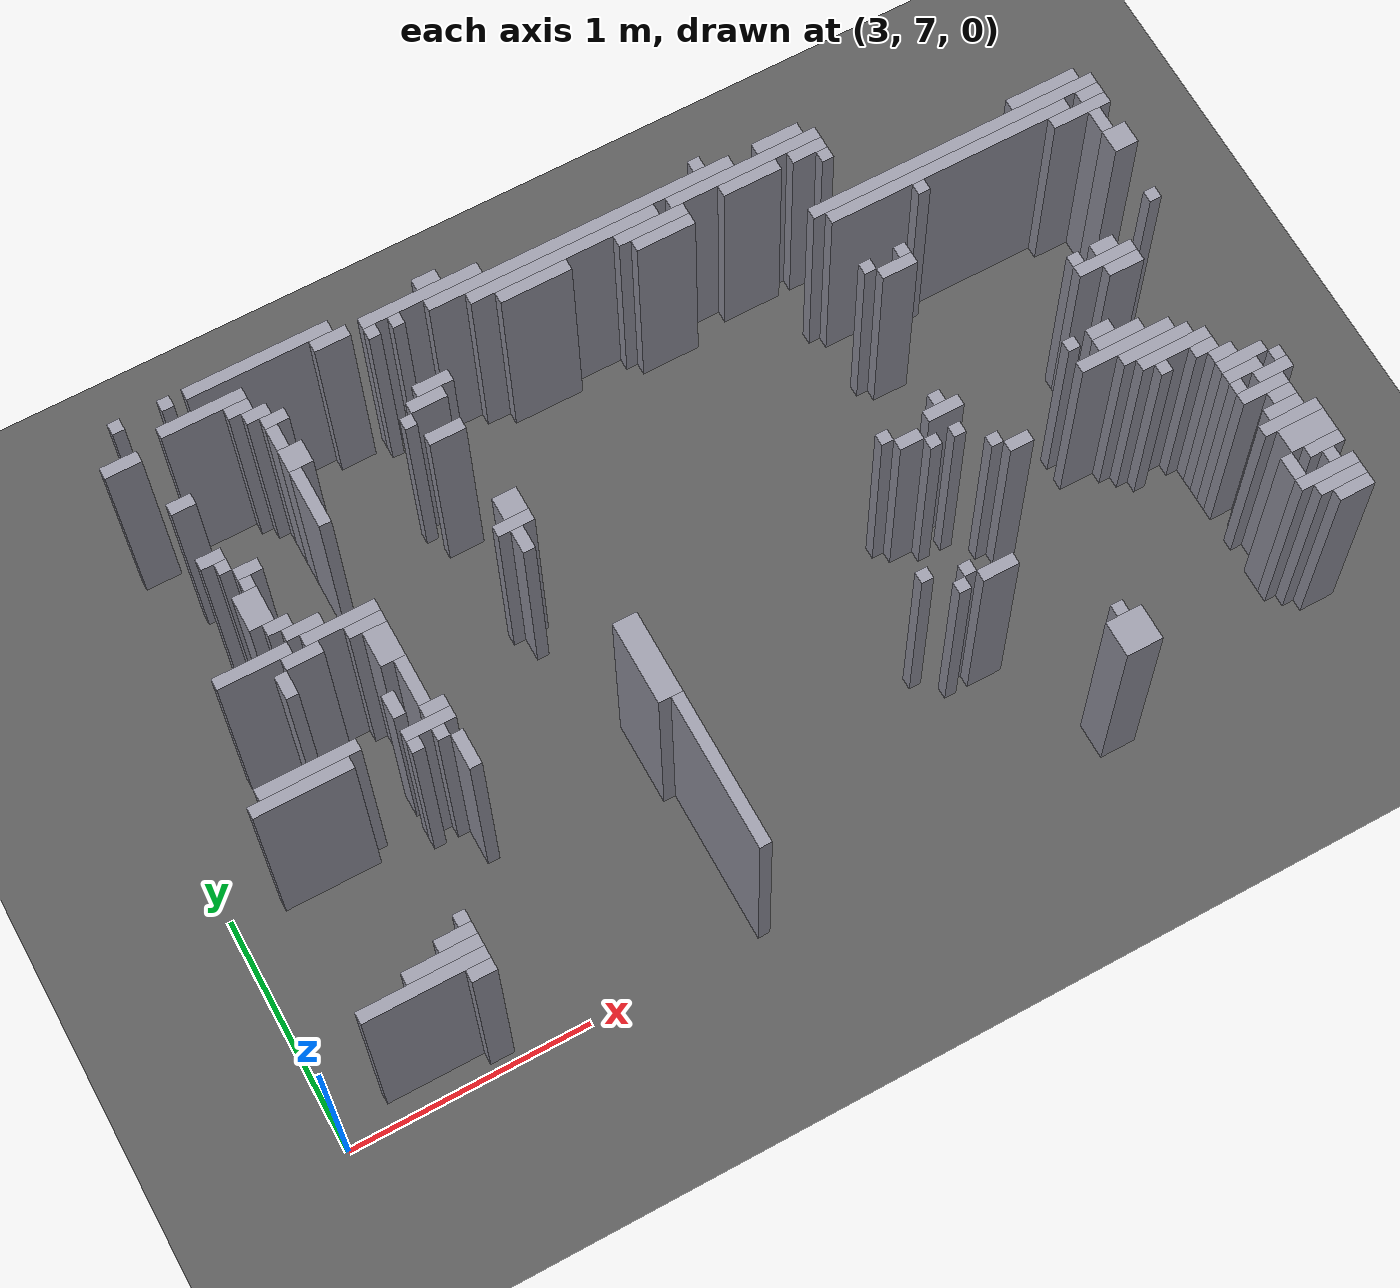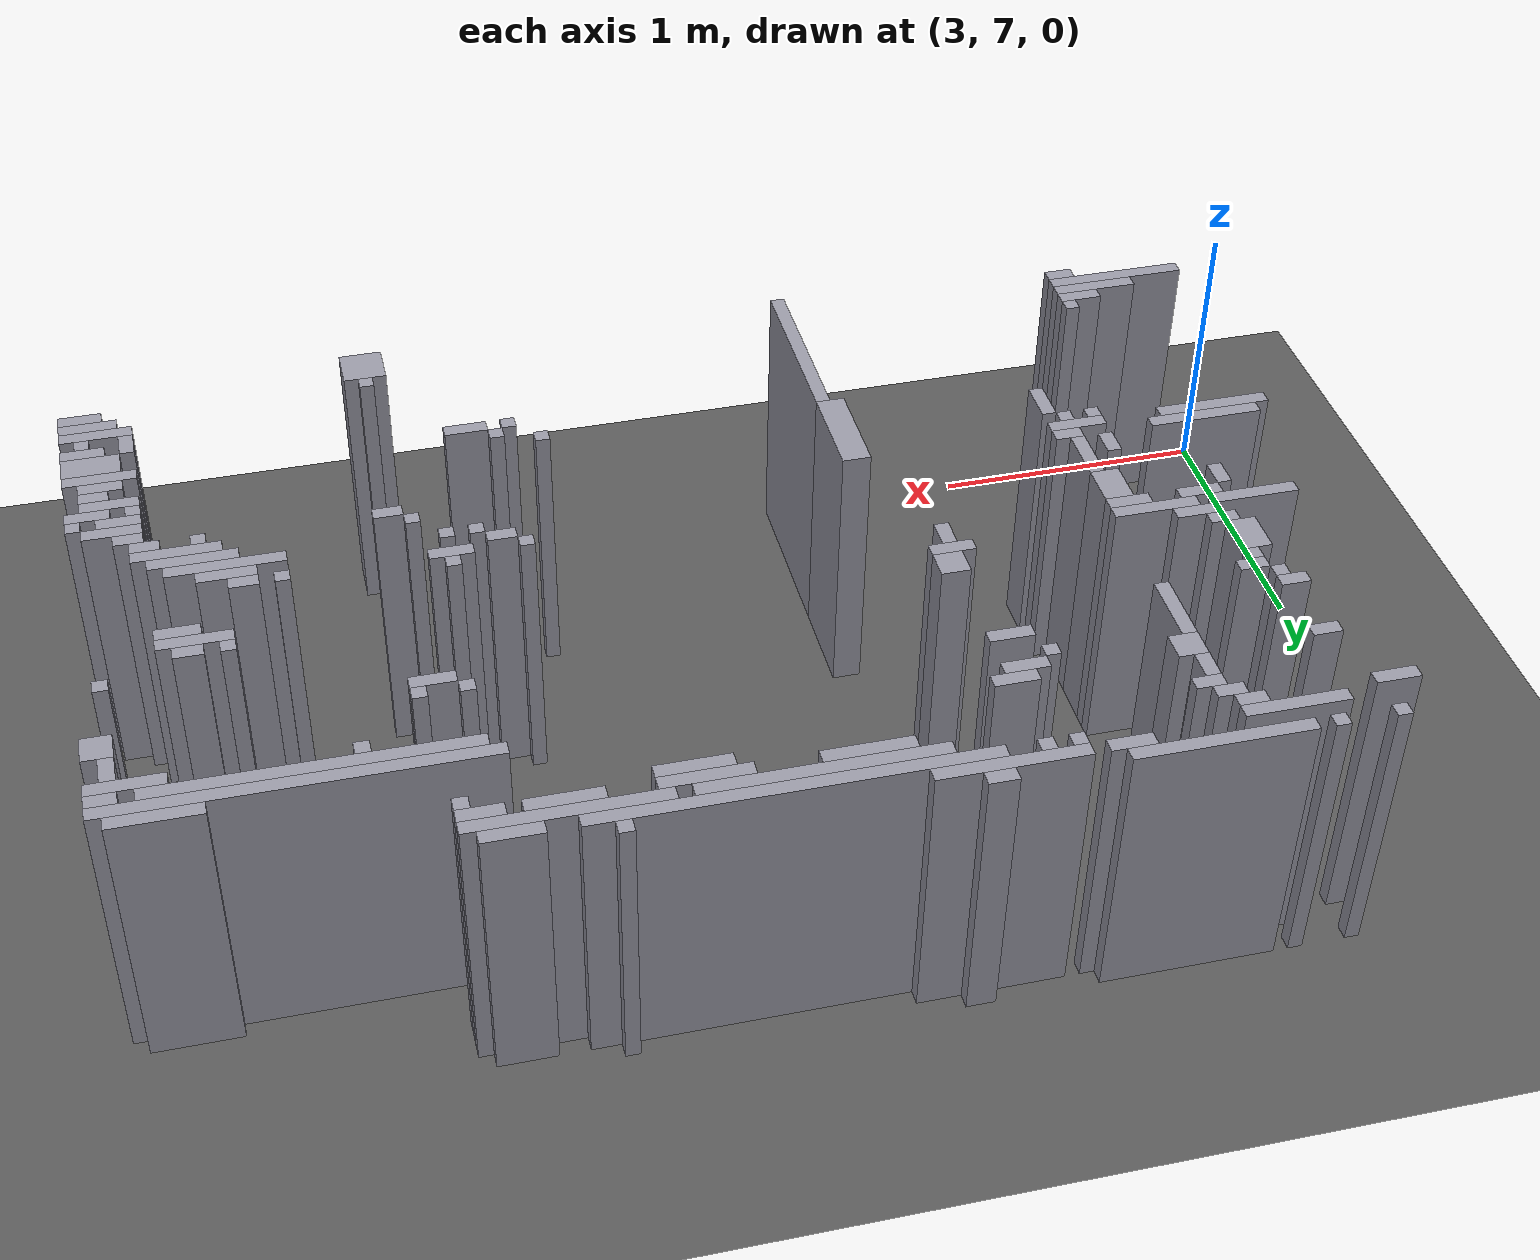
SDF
<sdf version="1.8">
 <world name="dimi">
  <model name="ground">
   <static>true</static>
   <link name="ground_link">
    <collision name="c"><geometry><plane><normal>0 0 1</normal><size>60 60</size></plane></geometry></collision>
    <visual name="v">
     <geometry><plane><normal>0 0 1</normal><size>60 60</size></plane></geometry>
     <material><ambient>0.3 0.3 0.3 1</ambient><diffuse>0.35 0.35 0.35 1</diffuse></material>
    </visual>
   </link>
  </model>
  <model name="walls">
   <static>true</static>
   <link name="wall_4">
    <pose>3.4280 9.5670 0.5000 0 0 0</pose>
    <collision name="c"><geometry><box><size>0.0500 0.0500 1.0000</size></box></geometry></collision>
    <visual name="v">
     <geometry><box><size>0.0500 0.0500 1.0000</size></box></geometry>
     <material><ambient>0.5 0.5 0.55 1</ambient><diffuse>0.6 0.6 0.65 1</diffuse></material>
    </visual>
   </link>
   <link name="wall_5">
    <pose>3.6280 9.5670 0.5000 0 0 0</pose>
    <collision name="c"><geometry><box><size>0.0500 0.0500 1.0000</size></box></geometry></collision>
    <visual name="v">
     <geometry><box><size>0.0500 0.0500 1.0000</size></box></geometry>
     <material><ambient>0.5 0.5 0.55 1</ambient><diffuse>0.6 0.6 0.65 1</diffuse></material>
    </visual>
   </link>
   <link name="wall_6">
    <pose>4.0030 9.5670 0.5000 0 0 0</pose>
    <collision name="c"><geometry><box><size>0.6000 0.0500 1.0000</size></box></geometry></collision>
    <visual name="v">
     <geometry><box><size>0.6000 0.0500 1.0000</size></box></geometry>
     <material><ambient>0.5 0.5 0.55 1</ambient><diffuse>0.6 0.6 0.65 1</diffuse></material>
    </visual>
   </link>
   <link name="wall_7">
    <pose>4.7030 9.5670 0.5000 0 0 0</pose>
    <collision name="c"><geometry><box><size>0.1000 0.0500 1.0000</size></box></geometry></collision>
    <visual name="v">
     <geometry><box><size>0.1000 0.0500 1.0000</size></box></geometry>
     <material><ambient>0.5 0.5 0.55 1</ambient><diffuse>0.6 0.6 0.65 1</diffuse></material>
    </visual>
   </link>
   <link name="wall_11">
    <pose>4.2780 9.5170 0.5000 0 0 0</pose>
    <collision name="c"><geometry><box><size>0.1500 0.0500 1.0000</size></box></geometry></collision>
    <visual name="v">
     <geometry><box><size>0.1500 0.0500 1.0000</size></box></geometry>
     <material><ambient>0.5 0.5 0.55 1</ambient><diffuse>0.6 0.6 0.65 1</diffuse></material>
    </visual>
   </link>
   <link name="wall_12">
    <pose>4.6530 9.5170 0.5000 0 0 0</pose>
    <collision name="c"><geometry><box><size>0.5000 0.0500 1.0000</size></box></geometry></collision>
    <visual name="v">
     <geometry><box><size>0.5000 0.0500 1.0000</size></box></geometry>
     <material><ambient>0.5 0.5 0.55 1</ambient><diffuse>0.6 0.6 0.65 1</diffuse></material>
    </visual>
   </link>
   <link name="wall_13">
    <pose>5.8280 9.5170 0.5000 0 0 0</pose>
    <collision name="c"><geometry><box><size>0.0500 0.0500 1.0000</size></box></geometry></collision>
    <visual name="v">
     <geometry><box><size>0.0500 0.0500 1.0000</size></box></geometry>
     <material><ambient>0.5 0.5 0.55 1</ambient><diffuse>0.6 0.6 0.65 1</diffuse></material>
    </visual>
   </link>
   <link name="wall_17">
    <pose>3.7280 9.4670 0.5000 0 0 0</pose>
    <collision name="c"><geometry><box><size>0.3500 0.0500 1.0000</size></box></geometry></collision>
    <visual name="v">
     <geometry><box><size>0.3500 0.0500 1.0000</size></box></geometry>
     <material><ambient>0.5 0.5 0.55 1</ambient><diffuse>0.6 0.6 0.65 1</diffuse></material>
    </visual>
   </link>
   <link name="wall_18">
    <pose>4.4280 9.4670 0.5000 0 0 0</pose>
    <collision name="c"><geometry><box><size>0.0500 0.0500 1.0000</size></box></geometry></collision>
    <visual name="v">
     <geometry><box><size>0.0500 0.0500 1.0000</size></box></geometry>
     <material><ambient>0.5 0.5 0.55 1</ambient><diffuse>0.6 0.6 0.65 1</diffuse></material>
    </visual>
   </link>
   <link name="wall_19">
    <pose>4.5280 9.4670 0.5000 0 0 0</pose>
    <collision name="c"><geometry><box><size>0.0500 0.0500 1.0000</size></box></geometry></collision>
    <visual name="v">
     <geometry><box><size>0.0500 0.0500 1.0000</size></box></geometry>
     <material><ambient>0.5 0.5 0.55 1</ambient><diffuse>0.6 0.6 0.65 1</diffuse></material>
    </visual>
   </link>
   <link name="wall_20">
    <pose>5.3030 9.4670 0.5000 0 0 0</pose>
    <collision name="c"><geometry><box><size>1.3000 0.0500 1.0000</size></box></geometry></collision>
    <visual name="v">
     <geometry><box><size>1.3000 0.0500 1.0000</size></box></geometry>
     <material><ambient>0.5 0.5 0.55 1</ambient><diffuse>0.6 0.6 0.65 1</diffuse></material>
    </visual>
   </link>
   <link name="wall_21">
    <pose>6.1530 9.4670 0.5000 0 0 0</pose>
    <collision name="c"><geometry><box><size>0.2000 0.0500 1.0000</size></box></geometry></collision>
    <visual name="v">
     <geometry><box><size>0.2000 0.0500 1.0000</size></box></geometry>
     <material><ambient>0.5 0.5 0.55 1</ambient><diffuse>0.6 0.6 0.65 1</diffuse></material>
    </visual>
   </link>
   <link name="wall_24">
    <pose>3.3780 9.4170 0.5000 0 0 0</pose>
    <collision name="c"><geometry><box><size>0.1500 0.0500 1.0000</size></box></geometry></collision>
    <visual name="v">
     <geometry><box><size>0.1500 0.0500 1.0000</size></box></geometry>
     <material><ambient>0.5 0.5 0.55 1</ambient><diffuse>0.6 0.6 0.65 1</diffuse></material>
    </visual>
   </link>
   <link name="wall_25">
    <pose>3.8530 9.4170 0.5000 0 0 0</pose>
    <collision name="c"><geometry><box><size>0.1000 0.0500 1.0000</size></box></geometry></collision>
    <visual name="v">
     <geometry><box><size>0.1000 0.0500 1.0000</size></box></geometry>
     <material><ambient>0.5 0.5 0.55 1</ambient><diffuse>0.6 0.6 0.65 1</diffuse></material>
    </visual>
   </link>
   <link name="wall_26">
    <pose>5.2030 9.4170 0.5000 0 0 0</pose>
    <collision name="c"><geometry><box><size>0.8000 0.0500 1.0000</size></box></geometry></collision>
    <visual name="v">
     <geometry><box><size>0.8000 0.0500 1.0000</size></box></geometry>
     <material><ambient>0.5 0.5 0.55 1</ambient><diffuse>0.6 0.6 0.65 1</diffuse></material>
    </visual>
   </link>
   <link name="wall_27">
    <pose>5.9780 9.4170 0.5000 0 0 0</pose>
    <collision name="c"><geometry><box><size>0.6500 0.0500 1.0000</size></box></geometry></collision>
    <visual name="v">
     <geometry><box><size>0.6500 0.0500 1.0000</size></box></geometry>
     <material><ambient>0.5 0.5 0.55 1</ambient><diffuse>0.6 0.6 0.65 1</diffuse></material>
    </visual>
   </link>
   <link name="wall_34">
    <pose>3.9030 9.3670 0.5000 0 0 0</pose>
    <collision name="c"><geometry><box><size>0.1000 0.0500 1.0000</size></box></geometry></collision>
    <visual name="v">
     <geometry><box><size>0.1000 0.0500 1.0000</size></box></geometry>
     <material><ambient>0.5 0.5 0.55 1</ambient><diffuse>0.6 0.6 0.65 1</diffuse></material>
    </visual>
   </link>
   <link name="wall_35">
    <pose>5.0530 9.3670 0.5000 0 0 0</pose>
    <collision name="c"><geometry><box><size>0.3000 0.0500 1.0000</size></box></geometry></collision>
    <visual name="v">
     <geometry><box><size>0.3000 0.0500 1.0000</size></box></geometry>
     <material><ambient>0.5 0.5 0.55 1</ambient><diffuse>0.6 0.6 0.65 1</diffuse></material>
    </visual>
   </link>
   <link name="wall_36">
    <pose>5.5530 9.3670 0.5000 0 0 0</pose>
    <collision name="c"><geometry><box><size>0.3000 0.0500 1.0000</size></box></geometry></collision>
    <visual name="v">
     <geometry><box><size>0.3000 0.0500 1.0000</size></box></geometry>
     <material><ambient>0.5 0.5 0.55 1</ambient><diffuse>0.6 0.6 0.65 1</diffuse></material>
    </visual>
   </link>
   <link name="wall_37">
    <pose>5.9780 9.3670 0.5000 0 0 0</pose>
    <collision name="c"><geometry><box><size>0.2500 0.0500 1.0000</size></box></geometry></collision>
    <visual name="v">
     <geometry><box><size>0.2500 0.0500 1.0000</size></box></geometry>
     <material><ambient>0.5 0.5 0.55 1</ambient><diffuse>0.6 0.6 0.65 1</diffuse></material>
    </visual>
   </link>
   <link name="wall_38">
    <pose>6.2280 9.3670 0.5000 0 0 0</pose>
    <collision name="c"><geometry><box><size>0.1500 0.0500 1.0000</size></box></geometry></collision>
    <visual name="v">
     <geometry><box><size>0.1500 0.0500 1.0000</size></box></geometry>
     <material><ambient>0.5 0.5 0.55 1</ambient><diffuse>0.6 0.6 0.65 1</diffuse></material>
    </visual>
   </link>
   <link name="wall_45">
    <pose>3.9530 9.3170 0.5000 0 0 0</pose>
    <collision name="c"><geometry><box><size>0.1000 0.0500 1.0000</size></box></geometry></collision>
    <visual name="v">
     <geometry><box><size>0.1000 0.0500 1.0000</size></box></geometry>
     <material><ambient>0.5 0.5 0.55 1</ambient><diffuse>0.6 0.6 0.65 1</diffuse></material>
    </visual>
   </link>
   <link name="wall_46">
    <pose>5.5780 9.3170 0.5000 0 0 0</pose>
    <collision name="c"><geometry><box><size>0.2500 0.0500 1.0000</size></box></geometry></collision>
    <visual name="v">
     <geometry><box><size>0.2500 0.0500 1.0000</size></box></geometry>
     <material><ambient>0.5 0.5 0.55 1</ambient><diffuse>0.6 0.6 0.65 1</diffuse></material>
    </visual>
   </link>
   <link name="wall_47">
    <pose>6.2780 9.3170 0.5000 0 0 0</pose>
    <collision name="c"><geometry><box><size>0.0500 0.0500 1.0000</size></box></geometry></collision>
    <visual name="v">
     <geometry><box><size>0.0500 0.0500 1.0000</size></box></geometry>
     <material><ambient>0.5 0.5 0.55 1</ambient><diffuse>0.6 0.6 0.65 1</diffuse></material>
    </visual>
   </link>
   <link name="wall_50">
    <pose>3.9280 9.2420 0.5000 0 0 0</pose>
    <collision name="c"><geometry><box><size>0.0500 0.1000 1.0000</size></box></geometry></collision>
    <visual name="v">
     <geometry><box><size>0.0500 0.1000 1.0000</size></box></geometry>
     <material><ambient>0.5 0.5 0.55 1</ambient><diffuse>0.6 0.6 0.65 1</diffuse></material>
    </visual>
   </link>
   <link name="wall_57">
    <pose>3.5030 9.1670 0.5000 0 0 0</pose>
    <collision name="c"><geometry><box><size>0.1000 0.0500 1.0000</size></box></geometry></collision>
    <visual name="v">
     <geometry><box><size>0.1000 0.0500 1.0000</size></box></geometry>
     <material><ambient>0.5 0.5 0.55 1</ambient><diffuse>0.6 0.6 0.65 1</diffuse></material>
    </visual>
   </link>
   <link name="wall_58">
    <pose>3.9530 9.1420 0.5000 0 0 0</pose>
    <collision name="c"><geometry><box><size>0.1000 0.1000 1.0000</size></box></geometry></collision>
    <visual name="v">
     <geometry><box><size>0.1000 0.1000 1.0000</size></box></geometry>
     <material><ambient>0.5 0.5 0.55 1</ambient><diffuse>0.6 0.6 0.65 1</diffuse></material>
    </visual>
   </link>
   <link name="wall_59">
    <pose>4.5280 9.1670 0.5000 0 0 0</pose>
    <collision name="c"><geometry><box><size>0.1500 0.0500 1.0000</size></box></geometry></collision>
    <visual name="v">
     <geometry><box><size>0.1500 0.0500 1.0000</size></box></geometry>
     <material><ambient>0.5 0.5 0.55 1</ambient><diffuse>0.6 0.6 0.65 1</diffuse></material>
    </visual>
   </link>
   <link name="wall_60">
    <pose>7.1530 9.1670 0.5000 0 0 0</pose>
    <collision name="c"><geometry><box><size>0.3000 0.0500 1.0000</size></box></geometry></collision>
    <visual name="v">
     <geometry><box><size>0.3000 0.0500 1.0000</size></box></geometry>
     <material><ambient>0.5 0.5 0.55 1</ambient><diffuse>0.6 0.6 0.65 1</diffuse></material>
    </visual>
   </link>
   <link name="wall_63">
    <pose>4.4780 9.1170 0.5000 0 0 0</pose>
    <collision name="c"><geometry><box><size>0.1500 0.0500 1.0000</size></box></geometry></collision>
    <visual name="v">
     <geometry><box><size>0.1500 0.0500 1.0000</size></box></geometry>
     <material><ambient>0.5 0.5 0.55 1</ambient><diffuse>0.6 0.6 0.65 1</diffuse></material>
    </visual>
   </link>
   <link name="wall_64">
    <pose>6.7280 9.1170 0.5000 0 0 0</pose>
    <collision name="c"><geometry><box><size>1.2500 0.0500 1.0000</size></box></geometry></collision>
    <visual name="v">
     <geometry><box><size>1.2500 0.0500 1.0000</size></box></geometry>
     <material><ambient>0.5 0.5 0.55 1</ambient><diffuse>0.6 0.6 0.65 1</diffuse></material>
    </visual>
   </link>
   <link name="wall_68">
    <pose>3.9280 8.9670 0.5000 0 0 0</pose>
    <collision name="c"><geometry><box><size>0.0500 0.2500 1.0000</size></box></geometry></collision>
    <visual name="v">
     <geometry><box><size>0.0500 0.2500 1.0000</size></box></geometry>
     <material><ambient>0.5 0.5 0.55 1</ambient><diffuse>0.6 0.6 0.65 1</diffuse></material>
    </visual>
   </link>
   <link name="wall_69">
    <pose>4.3780 9.0670 0.5000 0 0 0</pose>
    <collision name="c"><geometry><box><size>0.0500 0.0500 1.0000</size></box></geometry></collision>
    <visual name="v">
     <geometry><box><size>0.0500 0.0500 1.0000</size></box></geometry>
     <material><ambient>0.5 0.5 0.55 1</ambient><diffuse>0.6 0.6 0.65 1</diffuse></material>
    </visual>
   </link>
   <link name="wall_70">
    <pose>6.6780 9.0670 0.5000 0 0 0</pose>
    <collision name="c"><geometry><box><size>1.0500 0.0500 1.0000</size></box></geometry></collision>
    <visual name="v">
     <geometry><box><size>1.0500 0.0500 1.0000</size></box></geometry>
     <material><ambient>0.5 0.5 0.55 1</ambient><diffuse>0.6 0.6 0.65 1</diffuse></material>
    </visual>
   </link>
   <link name="wall_71">
    <pose>7.3030 9.0670 0.5000 0 0 0</pose>
    <collision name="c"><geometry><box><size>0.1000 0.0500 1.0000</size></box></geometry></collision>
    <visual name="v">
     <geometry><box><size>0.1000 0.0500 1.0000</size></box></geometry>
     <material><ambient>0.5 0.5 0.55 1</ambient><diffuse>0.6 0.6 0.65 1</diffuse></material>
    </visual>
   </link>
   <link name="wall_74">
    <pose>6.5280 9.0170 0.5000 0 0 0</pose>
    <collision name="c"><geometry><box><size>0.0500 0.0500 1.0000</size></box></geometry></collision>
    <visual name="v">
     <geometry><box><size>0.0500 0.0500 1.0000</size></box></geometry>
     <material><ambient>0.5 0.5 0.55 1</ambient><diffuse>0.6 0.6 0.65 1</diffuse></material>
    </visual>
   </link>
   <link name="wall_75">
    <pose>7.2280 9.0170 0.5000 0 0 0</pose>
    <collision name="c"><geometry><box><size>0.2500 0.0500 1.0000</size></box></geometry></collision>
    <visual name="v">
     <geometry><box><size>0.2500 0.0500 1.0000</size></box></geometry>
     <material><ambient>0.5 0.5 0.55 1</ambient><diffuse>0.6 0.6 0.65 1</diffuse></material>
    </visual>
   </link>
   <link name="wall_78">
    <pose>4.4780 8.9670 0.5000 0 0 0</pose>
    <collision name="c"><geometry><box><size>0.1500 0.0500 1.0000</size></box></geometry></collision>
    <visual name="v">
     <geometry><box><size>0.1500 0.0500 1.0000</size></box></geometry>
     <material><ambient>0.5 0.5 0.55 1</ambient><diffuse>0.6 0.6 0.65 1</diffuse></material>
    </visual>
   </link>
   <link name="wall_79">
    <pose>7.2780 8.9420 0.5000 0 0 0</pose>
    <collision name="c"><geometry><box><size>0.0500 0.1000 1.0000</size></box></geometry></collision>
    <visual name="v">
     <geometry><box><size>0.0500 0.1000 1.0000</size></box></geometry>
     <material><ambient>0.5 0.5 0.55 1</ambient><diffuse>0.6 0.6 0.65 1</diffuse></material>
    </visual>
   </link>
   <link name="wall_84">
    <pose>3.5030 8.9170 0.5000 0 0 0</pose>
    <collision name="c"><geometry><box><size>0.1000 0.0500 1.0000</size></box></geometry></collision>
    <visual name="v">
     <geometry><box><size>0.1000 0.0500 1.0000</size></box></geometry>
     <material><ambient>0.5 0.5 0.55 1</ambient><diffuse>0.6 0.6 0.65 1</diffuse></material>
    </visual>
   </link>
   <link name="wall_87">
    <pose>3.5280 8.8670 0.5000 0 0 0</pose>
    <collision name="c"><geometry><box><size>0.0500 0.0500 1.0000</size></box></geometry></collision>
    <visual name="v">
     <geometry><box><size>0.0500 0.0500 1.0000</size></box></geometry>
     <material><ambient>0.5 0.5 0.55 1</ambient><diffuse>0.6 0.6 0.65 1</diffuse></material>
    </visual>
   </link>
   <link name="wall_88">
    <pose>7.3030 8.8420 0.5000 0 0 0</pose>
    <collision name="c"><geometry><box><size>0.1000 0.1000 1.0000</size></box></geometry></collision>
    <visual name="v">
     <geometry><box><size>0.1000 0.1000 1.0000</size></box></geometry>
     <material><ambient>0.5 0.5 0.55 1</ambient><diffuse>0.6 0.6 0.65 1</diffuse></material>
    </visual>
   </link>
   <link name="wall_91">
    <pose>3.6030 8.8170 0.5000 0 0 0</pose>
    <collision name="c"><geometry><box><size>0.1000 0.0500 1.0000</size></box></geometry></collision>
    <visual name="v">
     <geometry><box><size>0.1000 0.0500 1.0000</size></box></geometry>
     <material><ambient>0.5 0.5 0.55 1</ambient><diffuse>0.6 0.6 0.65 1</diffuse></material>
    </visual>
   </link>
   <link name="wall_92">
    <pose>6.1780 8.8170 0.5000 0 0 0</pose>
    <collision name="c"><geometry><box><size>0.0500 0.0500 1.0000</size></box></geometry></collision>
    <visual name="v">
     <geometry><box><size>0.0500 0.0500 1.0000</size></box></geometry>
     <material><ambient>0.5 0.5 0.55 1</ambient><diffuse>0.6 0.6 0.65 1</diffuse></material>
    </visual>
   </link>
   <link name="wall_93">
    <pose>6.3280 8.8170 0.5000 0 0 0</pose>
    <collision name="c"><geometry><box><size>0.0500 0.0500 1.0000</size></box></geometry></collision>
    <visual name="v">
     <geometry><box><size>0.0500 0.0500 1.0000</size></box></geometry>
     <material><ambient>0.5 0.5 0.55 1</ambient><diffuse>0.6 0.6 0.65 1</diffuse></material>
    </visual>
   </link>
   <link name="wall_95">
    <pose>3.5780 8.7670 0.5000 0 0 0</pose>
    <collision name="c"><geometry><box><size>0.0500 0.0500 1.0000</size></box></geometry></collision>
    <visual name="v">
     <geometry><box><size>0.0500 0.0500 1.0000</size></box></geometry>
     <material><ambient>0.5 0.5 0.55 1</ambient><diffuse>0.6 0.6 0.65 1</diffuse></material>
    </visual>
   </link>
   <link name="wall_96">
    <pose>6.2780 8.7670 0.5000 0 0 0</pose>
    <collision name="c"><geometry><box><size>0.1500 0.0500 1.0000</size></box></geometry></collision>
    <visual name="v">
     <geometry><box><size>0.1500 0.0500 1.0000</size></box></geometry>
     <material><ambient>0.5 0.5 0.55 1</ambient><diffuse>0.6 0.6 0.65 1</diffuse></material>
    </visual>
   </link>
   <link name="wall_100">
    <pose>3.5530 8.6670 0.5000 0 0 0</pose>
    <collision name="c"><geometry><box><size>0.1000 0.1500 1.0000</size></box></geometry></collision>
    <visual name="v">
     <geometry><box><size>0.1000 0.1500 1.0000</size></box></geometry>
     <material><ambient>0.5 0.5 0.55 1</ambient><diffuse>0.6 0.6 0.65 1</diffuse></material>
    </visual>
   </link>
   <link name="wall_108">
    <pose>4.5530 8.5920 0.5000 0 0 0</pose>
    <collision name="c"><geometry><box><size>0.1000 0.1000 1.0000</size></box></geometry></collision>
    <visual name="v">
     <geometry><box><size>0.1000 0.1000 1.0000</size></box></geometry>
     <material><ambient>0.5 0.5 0.55 1</ambient><diffuse>0.6 0.6 0.65 1</diffuse></material>
    </visual>
   </link>
   <link name="wall_110">
    <pose>3.6030 8.5670 0.5000 0 0 0</pose>
    <collision name="c"><geometry><box><size>0.1000 0.0500 1.0000</size></box></geometry></collision>
    <visual name="v">
     <geometry><box><size>0.1000 0.0500 1.0000</size></box></geometry>
     <material><ambient>0.5 0.5 0.55 1</ambient><diffuse>0.6 0.6 0.65 1</diffuse></material>
    </visual>
   </link>
   <link name="wall_111">
    <pose>7.2780 8.5670 0.5000 0 0 0</pose>
    <collision name="c"><geometry><box><size>0.0500 0.0500 1.0000</size></box></geometry></collision>
    <visual name="v">
     <geometry><box><size>0.0500 0.0500 1.0000</size></box></geometry>
     <material><ambient>0.5 0.5 0.55 1</ambient><diffuse>0.6 0.6 0.65 1</diffuse></material>
    </visual>
   </link>
   <link name="wall_113">
    <pose>3.6780 8.5170 0.5000 0 0 0</pose>
    <collision name="c"><geometry><box><size>0.1500 0.0500 1.0000</size></box></geometry></collision>
    <visual name="v">
     <geometry><box><size>0.1500 0.0500 1.0000</size></box></geometry>
     <material><ambient>0.5 0.5 0.55 1</ambient><diffuse>0.6 0.6 0.65 1</diffuse></material>
    </visual>
   </link>
   <link name="wall_114">
    <pose>4.5280 8.5170 0.5000 0 0 0</pose>
    <collision name="c"><geometry><box><size>0.1500 0.0500 1.0000</size></box></geometry></collision>
    <visual name="v">
     <geometry><box><size>0.1500 0.0500 1.0000</size></box></geometry>
     <material><ambient>0.5 0.5 0.55 1</ambient><diffuse>0.6 0.6 0.65 1</diffuse></material>
    </visual>
   </link>
   <link name="wall_115">
    <pose>3.4530 8.4670 0.5000 0 0 0</pose>
    <collision name="c"><geometry><box><size>0.3000 0.0500 1.0000</size></box></geometry></collision>
    <visual name="v">
     <geometry><box><size>0.3000 0.0500 1.0000</size></box></geometry>
     <material><ambient>0.5 0.5 0.55 1</ambient><diffuse>0.6 0.6 0.65 1</diffuse></material>
    </visual>
   </link>
   <link name="wall_116">
    <pose>3.8030 8.4670 0.5000 0 0 0</pose>
    <collision name="c"><geometry><box><size>0.3000 0.0500 1.0000</size></box></geometry></collision>
    <visual name="v">
     <geometry><box><size>0.3000 0.0500 1.0000</size></box></geometry>
     <material><ambient>0.5 0.5 0.55 1</ambient><diffuse>0.6 0.6 0.65 1</diffuse></material>
    </visual>
   </link>
   <link name="wall_117">
    <pose>4.5280 8.4420 0.5000 0 0 0</pose>
    <collision name="c"><geometry><box><size>0.0500 0.1000 1.0000</size></box></geometry></collision>
    <visual name="v">
     <geometry><box><size>0.0500 0.1000 1.0000</size></box></geometry>
     <material><ambient>0.5 0.5 0.55 1</ambient><diffuse>0.6 0.6 0.65 1</diffuse></material>
    </visual>
   </link>
   <link name="wall_118">
    <pose>6.8780 8.4670 0.5000 0 0 0</pose>
    <collision name="c"><geometry><box><size>0.0500 0.0500 1.0000</size></box></geometry></collision>
    <visual name="v">
     <geometry><box><size>0.0500 0.0500 1.0000</size></box></geometry>
     <material><ambient>0.5 0.5 0.55 1</ambient><diffuse>0.6 0.6 0.65 1</diffuse></material>
    </visual>
   </link>
   <link name="wall_119">
    <pose>7.0030 8.4670 0.5000 0 0 0</pose>
    <collision name="c"><geometry><box><size>0.1000 0.0500 1.0000</size></box></geometry></collision>
    <visual name="v">
     <geometry><box><size>0.1000 0.0500 1.0000</size></box></geometry>
     <material><ambient>0.5 0.5 0.55 1</ambient><diffuse>0.6 0.6 0.65 1</diffuse></material>
    </visual>
   </link>
   <link name="wall_123">
    <pose>3.6280 8.4170 0.5000 0 0 0</pose>
    <collision name="c"><geometry><box><size>0.1500 0.0500 1.0000</size></box></geometry></collision>
    <visual name="v">
     <geometry><box><size>0.1500 0.0500 1.0000</size></box></geometry>
     <material><ambient>0.5 0.5 0.55 1</ambient><diffuse>0.6 0.6 0.65 1</diffuse></material>
    </visual>
   </link>
   <link name="wall_124">
    <pose>3.8780 8.4170 0.5000 0 0 0</pose>
    <collision name="c"><geometry><box><size>0.1500 0.0500 1.0000</size></box></geometry></collision>
    <visual name="v">
     <geometry><box><size>0.1500 0.0500 1.0000</size></box></geometry>
     <material><ambient>0.5 0.5 0.55 1</ambient><diffuse>0.6 0.6 0.65 1</diffuse></material>
    </visual>
   </link>
   <link name="wall_125">
    <pose>6.9780 8.4170 0.5000 0 0 0</pose>
    <collision name="c"><geometry><box><size>0.2500 0.0500 1.0000</size></box></geometry></collision>
    <visual name="v">
     <geometry><box><size>0.2500 0.0500 1.0000</size></box></geometry>
     <material><ambient>0.5 0.5 0.55 1</ambient><diffuse>0.6 0.6 0.65 1</diffuse></material>
    </visual>
   </link>
   <link name="wall_129">
    <pose>3.5280 8.3420 0.5000 0 0 0</pose>
    <collision name="c"><geometry><box><size>0.0500 0.1000 1.0000</size></box></geometry></collision>
    <visual name="v">
     <geometry><box><size>0.0500 0.1000 1.0000</size></box></geometry>
     <material><ambient>0.5 0.5 0.55 1</ambient><diffuse>0.6 0.6 0.65 1</diffuse></material>
    </visual>
   </link>
   <link name="wall_130">
    <pose>3.9030 8.3170 0.5000 0 0 0</pose>
    <collision name="c"><geometry><box><size>0.1000 0.1500 1.0000</size></box></geometry></collision>
    <visual name="v">
     <geometry><box><size>0.1000 0.1500 1.0000</size></box></geometry>
     <material><ambient>0.5 0.5 0.55 1</ambient><diffuse>0.6 0.6 0.65 1</diffuse></material>
    </visual>
   </link>
   <link name="wall_131">
    <pose>7.0280 8.3670 0.5000 0 0 0</pose>
    <collision name="c"><geometry><box><size>0.1500 0.0500 1.0000</size></box></geometry></collision>
    <visual name="v">
     <geometry><box><size>0.1500 0.0500 1.0000</size></box></geometry>
     <material><ambient>0.5 0.5 0.55 1</ambient><diffuse>0.6 0.6 0.65 1</diffuse></material>
    </visual>
   </link>
   <link name="wall_143">
    <pose>3.9280 8.1420 0.5000 0 0 0</pose>
    <collision name="c"><geometry><box><size>0.0500 0.2000 1.0000</size></box></geometry></collision>
    <visual name="v">
     <geometry><box><size>0.0500 0.2000 1.0000</size></box></geometry>
     <material><ambient>0.5 0.5 0.55 1</ambient><diffuse>0.6 0.6 0.65 1</diffuse></material>
    </visual>
   </link>
   <link name="wall_144">
    <pose>6.1280 8.2170 0.5000 0 0 0</pose>
    <collision name="c"><geometry><box><size>0.0500 0.0500 1.0000</size></box></geometry></collision>
    <visual name="v">
     <geometry><box><size>0.0500 0.0500 1.0000</size></box></geometry>
     <material><ambient>0.5 0.5 0.55 1</ambient><diffuse>0.6 0.6 0.65 1</diffuse></material>
    </visual>
   </link>
   <link name="wall_147">
    <pose>5.8780 8.1670 0.5000 0 0 0</pose>
    <collision name="c"><geometry><box><size>0.0500 0.0500 1.0000</size></box></geometry></collision>
    <visual name="v">
     <geometry><box><size>0.0500 0.0500 1.0000</size></box></geometry>
     <material><ambient>0.5 0.5 0.55 1</ambient><diffuse>0.6 0.6 0.65 1</diffuse></material>
    </visual>
   </link>
   <link name="wall_148">
    <pose>6.1280 8.1670 0.5000 0 0 0</pose>
    <collision name="c"><geometry><box><size>0.1500 0.0500 1.0000</size></box></geometry></collision>
    <visual name="v">
     <geometry><box><size>0.1500 0.0500 1.0000</size></box></geometry>
     <material><ambient>0.5 0.5 0.55 1</ambient><diffuse>0.6 0.6 0.65 1</diffuse></material>
    </visual>
   </link>
   <link name="wall_149">
    <pose>6.6780 8.1670 0.5000 0 0 0</pose>
    <collision name="c"><geometry><box><size>0.0500 0.0500 1.0000</size></box></geometry></collision>
    <visual name="v">
     <geometry><box><size>0.0500 0.0500 1.0000</size></box></geometry>
     <material><ambient>0.5 0.5 0.55 1</ambient><diffuse>0.6 0.6 0.65 1</diffuse></material>
    </visual>
   </link>
   <link name="wall_150">
    <pose>6.8030 8.1670 0.5000 0 0 0</pose>
    <collision name="c"><geometry><box><size>0.1000 0.0500 1.0000</size></box></geometry></collision>
    <visual name="v">
     <geometry><box><size>0.1000 0.0500 1.0000</size></box></geometry>
     <material><ambient>0.5 0.5 0.55 1</ambient><diffuse>0.6 0.6 0.65 1</diffuse></material>
    </visual>
   </link>
   <link name="wall_153">
    <pose>3.8280 8.0920 0.5000 0 0 0</pose>
    <collision name="c"><geometry><box><size>0.0500 0.1000 1.0000</size></box></geometry></collision>
    <visual name="v">
     <geometry><box><size>0.0500 0.1000 1.0000</size></box></geometry>
     <material><ambient>0.5 0.5 0.55 1</ambient><diffuse>0.6 0.6 0.65 1</diffuse></material>
    </visual>
   </link>
   <link name="wall_154">
    <pose>5.9530 8.1170 0.5000 0 0 0</pose>
    <collision name="c"><geometry><box><size>0.1000 0.0500 1.0000</size></box></geometry></collision>
    <visual name="v">
     <geometry><box><size>0.1000 0.0500 1.0000</size></box></geometry>
     <material><ambient>0.5 0.5 0.55 1</ambient><diffuse>0.6 0.6 0.65 1</diffuse></material>
    </visual>
   </link>
   <link name="wall_155">
    <pose>6.8530 8.1170 0.5000 0 0 0</pose>
    <collision name="c"><geometry><box><size>0.2000 0.0500 1.0000</size></box></geometry></collision>
    <visual name="v">
     <geometry><box><size>0.2000 0.0500 1.0000</size></box></geometry>
     <material><ambient>0.5 0.5 0.55 1</ambient><diffuse>0.6 0.6 0.65 1</diffuse></material>
    </visual>
   </link>
   <link name="wall_157">
    <pose>6.0280 8.0670 0.5000 0 0 0</pose>
    <collision name="c"><geometry><box><size>0.0500 0.0500 1.0000</size></box></geometry></collision>
    <visual name="v">
     <geometry><box><size>0.0500 0.0500 1.0000</size></box></geometry>
     <material><ambient>0.5 0.5 0.55 1</ambient><diffuse>0.6 0.6 0.65 1</diffuse></material>
    </visual>
   </link>
   <link name="wall_158">
    <pose>6.1280 8.0670 0.5000 0 0 0</pose>
    <collision name="c"><geometry><box><size>0.0500 0.0500 1.0000</size></box></geometry></collision>
    <visual name="v">
     <geometry><box><size>0.0500 0.0500 1.0000</size></box></geometry>
     <material><ambient>0.5 0.5 0.55 1</ambient><diffuse>0.6 0.6 0.65 1</diffuse></material>
    </visual>
   </link>
   <link name="wall_159">
    <pose>6.8530 8.0670 0.5000 0 0 0</pose>
    <collision name="c"><geometry><box><size>0.4000 0.0500 1.0000</size></box></geometry></collision>
    <visual name="v">
     <geometry><box><size>0.4000 0.0500 1.0000</size></box></geometry>
     <material><ambient>0.5 0.5 0.55 1</ambient><diffuse>0.6 0.6 0.65 1</diffuse></material>
    </visual>
   </link>
   <link name="wall_160">
    <pose>3.4530 8.0170 0.5000 0 0 0</pose>
    <collision name="c"><geometry><box><size>0.4000 0.0500 1.0000</size></box></geometry></collision>
    <visual name="v">
     <geometry><box><size>0.4000 0.0500 1.0000</size></box></geometry>
     <material><ambient>0.5 0.5 0.55 1</ambient><diffuse>0.6 0.6 0.65 1</diffuse></material>
    </visual>
   </link>
   <link name="wall_161">
    <pose>3.9530 8.0170 0.5000 0 0 0</pose>
    <collision name="c"><geometry><box><size>0.1000 0.0500 1.0000</size></box></geometry></collision>
    <visual name="v">
     <geometry><box><size>0.1000 0.0500 1.0000</size></box></geometry>
     <material><ambient>0.5 0.5 0.55 1</ambient><diffuse>0.6 0.6 0.65 1</diffuse></material>
    </visual>
   </link>
   <link name="wall_162">
    <pose>6.9530 8.0170 0.5000 0 0 0</pose>
    <collision name="c"><geometry><box><size>0.3000 0.0500 1.0000</size></box></geometry></collision>
    <visual name="v">
     <geometry><box><size>0.3000 0.0500 1.0000</size></box></geometry>
     <material><ambient>0.5 0.5 0.55 1</ambient><diffuse>0.6 0.6 0.65 1</diffuse></material>
    </visual>
   </link>
   <link name="wall_164">
    <pose>3.4030 7.9670 0.5000 0 0 0</pose>
    <collision name="c"><geometry><box><size>0.4000 0.0500 1.0000</size></box></geometry></collision>
    <visual name="v">
     <geometry><box><size>0.4000 0.0500 1.0000</size></box></geometry>
     <material><ambient>0.5 0.5 0.55 1</ambient><diffuse>0.6 0.6 0.65 1</diffuse></material>
    </visual>
   </link>
   <link name="wall_165">
    <pose>3.9030 7.9670 0.5000 0 0 0</pose>
    <collision name="c"><geometry><box><size>0.2000 0.0500 1.0000</size></box></geometry></collision>
    <visual name="v">
     <geometry><box><size>0.2000 0.0500 1.0000</size></box></geometry>
     <material><ambient>0.5 0.5 0.55 1</ambient><diffuse>0.6 0.6 0.65 1</diffuse></material>
    </visual>
   </link>
   <link name="wall_166">
    <pose>4.7030 7.8170 0.5000 0 0 0</pose>
    <collision name="c"><geometry><box><size>0.1000 0.3500 1.0000</size></box></geometry></collision>
    <visual name="v">
     <geometry><box><size>0.1000 0.3500 1.0000</size></box></geometry>
     <material><ambient>0.5 0.5 0.55 1</ambient><diffuse>0.6 0.6 0.65 1</diffuse></material>
    </visual>
   </link>
   <link name="wall_167">
    <pose>6.2280 7.9670 0.5000 0 0 0</pose>
    <collision name="c"><geometry><box><size>0.0500 0.0500 1.0000</size></box></geometry></collision>
    <visual name="v">
     <geometry><box><size>0.0500 0.0500 1.0000</size></box></geometry>
     <material><ambient>0.5 0.5 0.55 1</ambient><diffuse>0.6 0.6 0.65 1</diffuse></material>
    </visual>
   </link>
   <link name="wall_168">
    <pose>7.0030 7.9670 0.5000 0 0 0</pose>
    <collision name="c"><geometry><box><size>0.3000 0.0500 1.0000</size></box></geometry></collision>
    <visual name="v">
     <geometry><box><size>0.3000 0.0500 1.0000</size></box></geometry>
     <material><ambient>0.5 0.5 0.55 1</ambient><diffuse>0.6 0.6 0.65 1</diffuse></material>
    </visual>
   </link>
   <link name="wall_172">
    <pose>3.8280 7.9170 0.5000 0 0 0</pose>
    <collision name="c"><geometry><box><size>0.0500 0.0500 1.0000</size></box></geometry></collision>
    <visual name="v">
     <geometry><box><size>0.0500 0.0500 1.0000</size></box></geometry>
     <material><ambient>0.5 0.5 0.55 1</ambient><diffuse>0.6 0.6 0.65 1</diffuse></material>
    </visual>
   </link>
   <link name="wall_173">
    <pose>3.9280 7.9170 0.5000 0 0 0</pose>
    <collision name="c"><geometry><box><size>0.0500 0.0500 1.0000</size></box></geometry></collision>
    <visual name="v">
     <geometry><box><size>0.0500 0.0500 1.0000</size></box></geometry>
     <material><ambient>0.5 0.5 0.55 1</ambient><diffuse>0.6 0.6 0.65 1</diffuse></material>
    </visual>
   </link>
   <link name="wall_174">
    <pose>6.3030 7.9170 0.5000 0 0 0</pose>
    <collision name="c"><geometry><box><size>0.1000 0.0500 1.0000</size></box></geometry></collision>
    <visual name="v">
     <geometry><box><size>0.1000 0.0500 1.0000</size></box></geometry>
     <material><ambient>0.5 0.5 0.55 1</ambient><diffuse>0.6 0.6 0.65 1</diffuse></material>
    </visual>
   </link>
   <link name="wall_175">
    <pose>6.9280 7.9170 0.5000 0 0 0</pose>
    <collision name="c"><geometry><box><size>0.0500 0.0500 1.0000</size></box></geometry></collision>
    <visual name="v">
     <geometry><box><size>0.0500 0.0500 1.0000</size></box></geometry>
     <material><ambient>0.5 0.5 0.55 1</ambient><diffuse>0.6 0.6 0.65 1</diffuse></material>
    </visual>
   </link>
   <link name="wall_176">
    <pose>7.1030 7.9170 0.5000 0 0 0</pose>
    <collision name="c"><geometry><box><size>0.1000 0.0500 1.0000</size></box></geometry></collision>
    <visual name="v">
     <geometry><box><size>0.1000 0.0500 1.0000</size></box></geometry>
     <material><ambient>0.5 0.5 0.55 1</ambient><diffuse>0.6 0.6 0.65 1</diffuse></material>
    </visual>
   </link>
   <link name="wall_179">
    <pose>3.9780 7.8170 0.5000 0 0 0</pose>
    <collision name="c"><geometry><box><size>0.0500 0.1500 1.0000</size></box></geometry></collision>
    <visual name="v">
     <geometry><box><size>0.0500 0.1500 1.0000</size></box></geometry>
     <material><ambient>0.5 0.5 0.55 1</ambient><diffuse>0.6 0.6 0.65 1</diffuse></material>
    </visual>
   </link>
   <link name="wall_180">
    <pose>7.1530 7.8670 0.5000 0 0 0</pose>
    <collision name="c"><geometry><box><size>0.1000 0.0500 1.0000</size></box></geometry></collision>
    <visual name="v">
     <geometry><box><size>0.1000 0.0500 1.0000</size></box></geometry>
     <material><ambient>0.5 0.5 0.55 1</ambient><diffuse>0.6 0.6 0.65 1</diffuse></material>
    </visual>
   </link>
   <link name="wall_183">
    <pose>7.2030 7.8170 0.5000 0 0 0</pose>
    <collision name="c"><geometry><box><size>0.2000 0.0500 1.0000</size></box></geometry></collision>
    <visual name="v">
     <geometry><box><size>0.2000 0.0500 1.0000</size></box></geometry>
     <material><ambient>0.5 0.5 0.55 1</ambient><diffuse>0.6 0.6 0.65 1</diffuse></material>
    </visual>
   </link>
   <link name="wall_186">
    <pose>7.1780 7.7670 0.5000 0 0 0</pose>
    <collision name="c"><geometry><box><size>0.1500 0.0500 1.0000</size></box></geometry></collision>
    <visual name="v">
     <geometry><box><size>0.1500 0.0500 1.0000</size></box></geometry>
     <material><ambient>0.5 0.5 0.55 1</ambient><diffuse>0.6 0.6 0.65 1</diffuse></material>
    </visual>
   </link>
   <link name="wall_187">
    <pose>7.3280 7.7670 0.5000 0 0 0</pose>
    <collision name="c"><geometry><box><size>0.0500 0.0500 1.0000</size></box></geometry></collision>
    <visual name="v">
     <geometry><box><size>0.0500 0.0500 1.0000</size></box></geometry>
     <material><ambient>0.5 0.5 0.55 1</ambient><diffuse>0.6 0.6 0.65 1</diffuse></material>
    </visual>
   </link>
   <link name="wall_191">
    <pose>7.1280 7.7170 0.5000 0 0 0</pose>
    <collision name="c"><geometry><box><size>0.0500 0.0500 1.0000</size></box></geometry></collision>
    <visual name="v">
     <geometry><box><size>0.0500 0.0500 1.0000</size></box></geometry>
     <material><ambient>0.5 0.5 0.55 1</ambient><diffuse>0.6 0.6 0.65 1</diffuse></material>
    </visual>
   </link>
   <link name="wall_192">
    <pose>7.2780 7.7170 0.5000 0 0 0</pose>
    <collision name="c"><geometry><box><size>0.1500 0.0500 1.0000</size></box></geometry></collision>
    <visual name="v">
     <geometry><box><size>0.1500 0.0500 1.0000</size></box></geometry>
     <material><ambient>0.5 0.5 0.55 1</ambient><diffuse>0.6 0.6 0.65 1</diffuse></material>
    </visual>
   </link>
   <link name="wall_197">
    <pose>7.2030 7.6670 0.5000 0 0 0</pose>
    <collision name="c"><geometry><box><size>0.2000 0.0500 1.0000</size></box></geometry></collision>
    <visual name="v">
     <geometry><box><size>0.2000 0.0500 1.0000</size></box></geometry>
     <material><ambient>0.5 0.5 0.55 1</ambient><diffuse>0.6 0.6 0.65 1</diffuse></material>
    </visual>
   </link>
   <link name="wall_201">
    <pose>4.7280 7.3170 0.5000 0 0 0</pose>
    <collision name="c"><geometry><box><size>0.0500 0.6500 1.0000</size></box></geometry></collision>
    <visual name="v">
     <geometry><box><size>0.0500 0.6500 1.0000</size></box></geometry>
     <material><ambient>0.5 0.5 0.55 1</ambient><diffuse>0.6 0.6 0.65 1</diffuse></material>
    </visual>
   </link>
   <link name="wall_202">
    <pose>5.7280 7.6170 0.5000 0 0 0</pose>
    <collision name="c"><geometry><box><size>0.0500 0.0500 1.0000</size></box></geometry></collision>
    <visual name="v">
     <geometry><box><size>0.0500 0.0500 1.0000</size></box></geometry>
     <material><ambient>0.5 0.5 0.55 1</ambient><diffuse>0.6 0.6 0.65 1</diffuse></material>
    </visual>
   </link>
   <link name="wall_203">
    <pose>7.2530 7.6170 0.5000 0 0 0</pose>
    <collision name="c"><geometry><box><size>0.1000 0.0500 1.0000</size></box></geometry></collision>
    <visual name="v">
     <geometry><box><size>0.1000 0.0500 1.0000</size></box></geometry>
     <material><ambient>0.5 0.5 0.55 1</ambient><diffuse>0.6 0.6 0.65 1</diffuse></material>
    </visual>
   </link>
   <link name="wall_208">
    <pose>5.8780 7.5670 0.5000 0 0 0</pose>
    <collision name="c"><geometry><box><size>0.0500 0.0500 1.0000</size></box></geometry></collision>
    <visual name="v">
     <geometry><box><size>0.0500 0.0500 1.0000</size></box></geometry>
     <material><ambient>0.5 0.5 0.55 1</ambient><diffuse>0.6 0.6 0.65 1</diffuse></material>
    </visual>
   </link>
   <link name="wall_209">
    <pose>7.2280 7.5670 0.5000 0 0 0</pose>
    <collision name="c"><geometry><box><size>0.1500 0.0500 1.0000</size></box></geometry></collision>
    <visual name="v">
     <geometry><box><size>0.1500 0.0500 1.0000</size></box></geometry>
     <material><ambient>0.5 0.5 0.55 1</ambient><diffuse>0.6 0.6 0.65 1</diffuse></material>
    </visual>
   </link>
   <link name="wall_213">
    <pose>5.8280 7.5170 0.5000 0 0 0</pose>
    <collision name="c"><geometry><box><size>0.0500 0.0500 1.0000</size></box></geometry></collision>
    <visual name="v">
     <geometry><box><size>0.0500 0.0500 1.0000</size></box></geometry>
     <material><ambient>0.5 0.5 0.55 1</ambient><diffuse>0.6 0.6 0.65 1</diffuse></material>
    </visual>
   </link>
   <link name="wall_214">
    <pose>5.9780 7.5170 0.5000 0 0 0</pose>
    <collision name="c"><geometry><box><size>0.1500 0.0500 1.0000</size></box></geometry></collision>
    <visual name="v">
     <geometry><box><size>0.1500 0.0500 1.0000</size></box></geometry>
     <material><ambient>0.5 0.5 0.55 1</ambient><diffuse>0.6 0.6 0.65 1</diffuse></material>
    </visual>
   </link>
   <link name="wall_215">
    <pose>7.2280 7.5170 0.5000 0 0 0</pose>
    <collision name="c"><geometry><box><size>0.2500 0.0500 1.0000</size></box></geometry></collision>
    <visual name="v">
     <geometry><box><size>0.2500 0.0500 1.0000</size></box></geometry>
     <material><ambient>0.5 0.5 0.55 1</ambient><diffuse>0.6 0.6 0.65 1</diffuse></material>
    </visual>
   </link>
   <link name="wall_218">
    <pose>7.2530 7.4420 0.5000 0 0 0</pose>
    <collision name="c"><geometry><box><size>0.2000 0.1000 1.0000</size></box></geometry></collision>
    <visual name="v">
     <geometry><box><size>0.2000 0.1000 1.0000</size></box></geometry>
     <material><ambient>0.5 0.5 0.55 1</ambient><diffuse>0.6 0.6 0.65 1</diffuse></material>
    </visual>
   </link>
   <link name="wall_222">
    <pose>7.1280 7.3420 0.5000 0 0 0</pose>
    <collision name="c"><geometry><box><size>0.0500 0.1000 1.0000</size></box></geometry></collision>
    <visual name="v">
     <geometry><box><size>0.0500 0.1000 1.0000</size></box></geometry>
     <material><ambient>0.5 0.5 0.55 1</ambient><diffuse>0.6 0.6 0.65 1</diffuse></material>
    </visual>
   </link>
   <link name="wall_223">
    <pose>7.2780 7.3670 0.5000 0 0 0</pose>
    <collision name="c"><geometry><box><size>0.1500 0.0500 1.0000</size></box></geometry></collision>
    <visual name="v">
     <geometry><box><size>0.1500 0.0500 1.0000</size></box></geometry>
     <material><ambient>0.5 0.5 0.55 1</ambient><diffuse>0.6 0.6 0.65 1</diffuse></material>
    </visual>
   </link>
   <link name="wall_225">
    <pose>7.2780 7.3170 0.5000 0 0 0</pose>
    <collision name="c"><geometry><box><size>0.0500 0.0500 1.0000</size></box></geometry></collision>
    <visual name="v">
     <geometry><box><size>0.0500 0.0500 1.0000</size></box></geometry>
     <material><ambient>0.5 0.5 0.55 1</ambient><diffuse>0.6 0.6 0.65 1</diffuse></material>
    </visual>
   </link>
   <link name="wall_231">
    <pose>3.6780 7.2670 0.5000 0 0 0</pose>
    <collision name="c"><geometry><box><size>0.0500 0.0500 1.0000</size></box></geometry></collision>
    <visual name="v">
     <geometry><box><size>0.0500 0.0500 1.0000</size></box></geometry>
     <material><ambient>0.5 0.5 0.55 1</ambient><diffuse>0.6 0.6 0.65 1</diffuse></material>
    </visual>
   </link>
   <link name="wall_232">
    <pose>7.2280 7.2670 0.5000 0 0 0</pose>
    <collision name="c"><geometry><box><size>0.2500 0.0500 1.0000</size></box></geometry></collision>
    <visual name="v">
     <geometry><box><size>0.2500 0.0500 1.0000</size></box></geometry>
     <material><ambient>0.5 0.5 0.55 1</ambient><diffuse>0.6 0.6 0.65 1</diffuse></material>
    </visual>
   </link>
   <link name="wall_239">
    <pose>3.6280 7.2170 0.5000 0 0 0</pose>
    <collision name="c"><geometry><box><size>0.1500 0.0500 1.0000</size></box></geometry></collision>
    <visual name="v">
     <geometry><box><size>0.1500 0.0500 1.0000</size></box></geometry>
     <material><ambient>0.5 0.5 0.55 1</ambient><diffuse>0.6 0.6 0.65 1</diffuse></material>
    </visual>
   </link>
   <link name="wall_240">
    <pose>7.2530 7.2170 0.5000 0 0 0</pose>
    <collision name="c"><geometry><box><size>0.2000 0.0500 1.0000</size></box></geometry></collision>
    <visual name="v">
     <geometry><box><size>0.2000 0.0500 1.0000</size></box></geometry>
     <material><ambient>0.5 0.5 0.55 1</ambient><diffuse>0.6 0.6 0.65 1</diffuse></material>
    </visual>
   </link>
   <link name="wall_243">
    <pose>3.5530 7.1670 0.5000 0 0 0</pose>
    <collision name="c"><geometry><box><size>0.3000 0.0500 1.0000</size></box></geometry></collision>
    <visual name="v">
     <geometry><box><size>0.3000 0.0500 1.0000</size></box></geometry>
     <material><ambient>0.5 0.5 0.55 1</ambient><diffuse>0.6 0.6 0.65 1</diffuse></material>
    </visual>
   </link>
   <link name="wall_244">
    <pose>6.2780 7.1670 0.5000 0 0 0</pose>
    <collision name="c"><geometry><box><size>0.0500 0.0500 1.0000</size></box></geometry></collision>
    <visual name="v">
     <geometry><box><size>0.0500 0.0500 1.0000</size></box></geometry>
     <material><ambient>0.5 0.5 0.55 1</ambient><diffuse>0.6 0.6 0.65 1</diffuse></material>
    </visual>
   </link>
   <link name="wall_245">
    <pose>7.2780 7.1670 0.5000 0 0 0</pose>
    <collision name="c"><geometry><box><size>0.1500 0.0500 1.0000</size></box></geometry></collision>
    <visual name="v">
     <geometry><box><size>0.1500 0.0500 1.0000</size></box></geometry>
     <material><ambient>0.5 0.5 0.55 1</ambient><diffuse>0.6 0.6 0.65 1</diffuse></material>
    </visual>
   </link>
   <link name="wall_249">
    <pose>3.4530 7.1170 0.5000 0 0 0</pose>
    <collision name="c"><geometry><box><size>0.5000 0.0500 1.0000</size></box></geometry></collision>
    <visual name="v">
     <geometry><box><size>0.5000 0.0500 1.0000</size></box></geometry>
     <material><ambient>0.5 0.5 0.55 1</ambient><diffuse>0.6 0.6 0.65 1</diffuse></material>
    </visual>
   </link>
   <link name="wall_250">
    <pose>6.2780 7.0670 0.5000 0 0 0</pose>
    <collision name="c"><geometry><box><size>0.1500 0.1500 1.0000</size></box></geometry></collision>
    <visual name="v">
     <geometry><box><size>0.1500 0.1500 1.0000</size></box></geometry>
     <material><ambient>0.5 0.5 0.55 1</ambient><diffuse>0.6 0.6 0.65 1</diffuse></material>
    </visual>
   </link>
   <link name="wall_254">
    <pose>3.6530 7.0670 0.5000 0 0 0</pose>
    <collision name="c"><geometry><box><size>0.1000 0.0500 1.0000</size></box></geometry></collision>
    <visual name="v">
     <geometry><box><size>0.1000 0.0500 1.0000</size></box></geometry>
     <material><ambient>0.5 0.5 0.55 1</ambient><diffuse>0.6 0.6 0.65 1</diffuse></material>
    </visual>
   </link>
  </model>
 </world>
</sdf>
